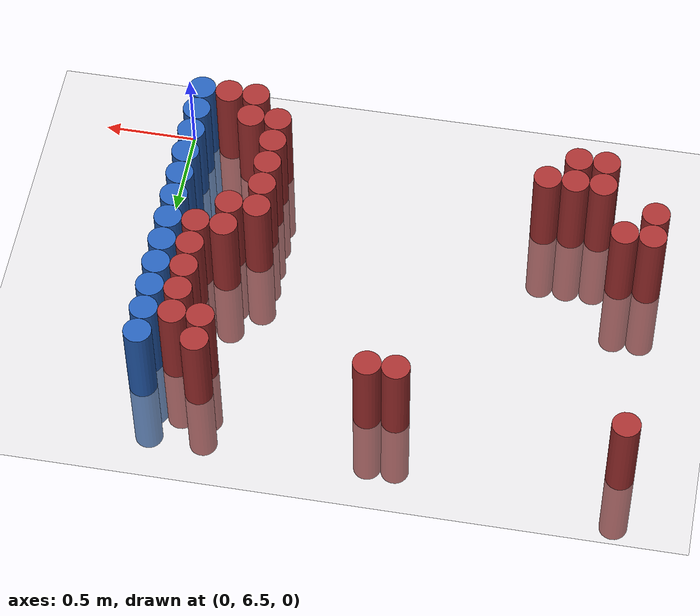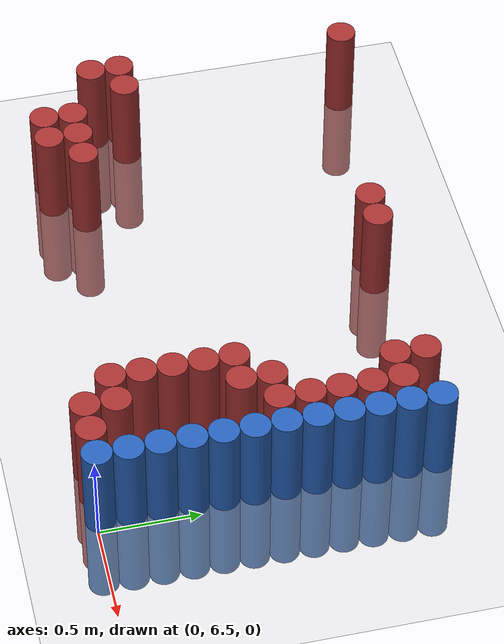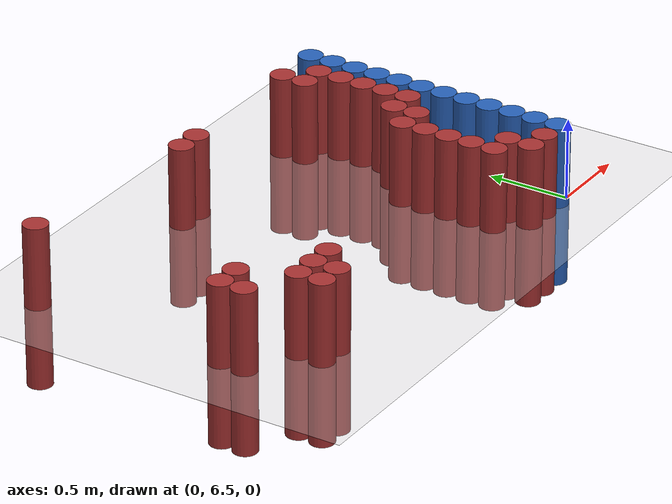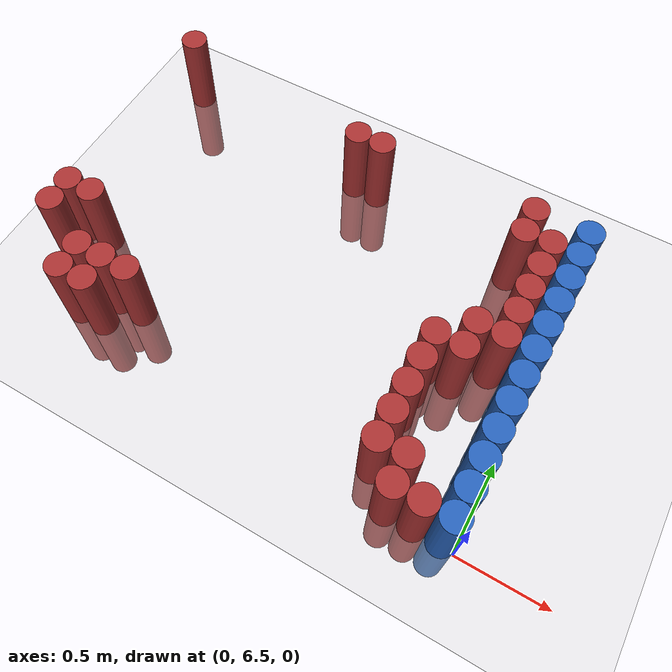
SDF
<sdf version="1.6">
 <world name="default">
  <model name="ground_plane">
   <static>1</static>
   <link name="link">
    <collision name="collision">
     <geometry><plane><normal>0 0 1</normal><size>100 100</size></plane></geometry>
     <surface><friction><ode><mu>100</mu><mu2>50</mu2></ode></friction></surface>
    </collision>
    <visual name="visual">
     <cast_shadows>0</cast_shadows>
     <geometry><plane><normal>0 0 1</normal><size>100 100</size></plane></geometry>
     <material>
      <script><uri>file://media/materials/scripts/gazebo.material</uri><name>Gazebo/Grey</name></script>
     </material>
    </visual>
   </link>
  </model>
  <model name="unit_cylinder_212">
   <static>1</static>
   <pose>-2.625000 6.975000 0.000000 0.000000 0.000000 0.000000</pose>
   <link name="link">
    <inertial>
     <mass>1</mass>
     <inertia><ixx>0.145833</ixx><ixy>0</ixy><ixz>0</ixz><iyy>0.145833</iyy><iyz>0</iyz><izz>0.125</izz></inertia>
    </inertial>
    <collision name="collision">
     <geometry><cylinder><radius>0.075000</radius><length>1</length></cylinder></geometry>
    </collision>
    <visual name="visual">
     <geometry><cylinder><radius>0.075000</radius><length>1</length></cylinder></geometry>
     <material>
      <ambient>0.648000 0.192000 0.192000 1</ambient>
      <diffuse>0.648000 0.192000 0.192000 1</diffuse>
     </material>
     <material>
      <script><name>Gazebo/Grey</name><uri>file://media/materials/scripts/gazebo.material</uri></script>
     </material>
    </visual>
    <sensor name="sensor_contact" type="contact"><contact><collision>collision</collision></contact></sensor>
   </link>
   <plugin filename="gz-sim-touchplugin-system" name="gz::sim::systems::TouchPlugin">
    <target>robot</target>
    <namespace>robot</namespace>
    <time>0.001</time>
    <enabled>true</enabled>
   </plugin>
  </model>
  <model name="unit_cylinder_213">
   <static>1</static>
   <pose>-2.625000 7.125000 0.000000 0.000000 0.000000 0.000000</pose>
   <link name="link">
    <inertial>
     <mass>1</mass>
     <inertia><ixx>0.145833</ixx><ixy>0</ixy><ixz>0</ixz><iyy>0.145833</iyy><iyz>0</iyz><izz>0.125</izz></inertia>
    </inertial>
    <collision name="collision">
     <geometry><cylinder><radius>0.075000</radius><length>1</length></cylinder></geometry>
    </collision>
    <visual name="visual">
     <geometry><cylinder><radius>0.075000</radius><length>1</length></cylinder></geometry>
     <material>
      <ambient>0.648000 0.192000 0.192000 1</ambient>
      <diffuse>0.648000 0.192000 0.192000 1</diffuse>
     </material>
     <material>
      <script><name>Gazebo/Grey</name><uri>file://media/materials/scripts/gazebo.material</uri></script>
     </material>
    </visual>
    <sensor name="sensor_contact" type="contact"><contact><collision>collision</collision></contact></sensor>
   </link>
   <plugin filename="gz-sim-touchplugin-system" name="gz::sim::systems::TouchPlugin">
    <target>robot</target>
    <namespace>robot</namespace>
    <time>0.001</time>
    <enabled>true</enabled>
   </plugin>
  </model>
  <model name="unit_cylinder_214">
   <static>1</static>
   <pose>-2.625000 8.325000 0.000000 0.000000 0.000000 0.000000</pose>
   <link name="link">
    <inertial>
     <mass>1</mass>
     <inertia><ixx>0.145833</ixx><ixy>0</ixy><ixz>0</ixz><iyy>0.145833</iyy><iyz>0</iyz><izz>0.125</izz></inertia>
    </inertial>
    <collision name="collision">
     <geometry><cylinder><radius>0.075000</radius><length>1</length></cylinder></geometry>
    </collision>
    <visual name="visual">
     <geometry><cylinder><radius>0.075000</radius><length>1</length></cylinder></geometry>
     <material>
      <ambient>0.648000 0.192000 0.192000 1</ambient>
      <diffuse>0.648000 0.192000 0.192000 1</diffuse>
     </material>
     <material>
      <script><name>Gazebo/Grey</name><uri>file://media/materials/scripts/gazebo.material</uri></script>
     </material>
    </visual>
    <sensor name="sensor_contact" type="contact"><contact><collision>collision</collision></contact></sensor>
   </link>
   <plugin filename="gz-sim-touchplugin-system" name="gz::sim::systems::TouchPlugin">
    <target>robot</target>
    <namespace>robot</namespace>
    <time>0.001</time>
    <enabled>true</enabled>
   </plugin>
  </model>
  <model name="unit_cylinder_218">
   <static>1</static>
   <pose>-2.475000 7.125000 0.000000 0.000000 0.000000 0.000000</pose>
   <link name="link">
    <inertial>
     <mass>1</mass>
     <inertia><ixx>0.145833</ixx><ixy>0</ixy><ixz>0</ixz><iyy>0.145833</iyy><iyz>0</iyz><izz>0.125</izz></inertia>
    </inertial>
    <collision name="collision">
     <geometry><cylinder><radius>0.075000</radius><length>1</length></cylinder></geometry>
    </collision>
    <visual name="visual">
     <geometry><cylinder><radius>0.075000</radius><length>1</length></cylinder></geometry>
     <material>
      <ambient>0.648000 0.192000 0.192000 1</ambient>
      <diffuse>0.648000 0.192000 0.192000 1</diffuse>
     </material>
     <material>
      <script><name>Gazebo/Grey</name><uri>file://media/materials/scripts/gazebo.material</uri></script>
     </material>
    </visual>
    <sensor name="sensor_contact" type="contact"><contact><collision>collision</collision></contact></sensor>
   </link>
   <plugin filename="gz-sim-touchplugin-system" name="gz::sim::systems::TouchPlugin">
    <target>robot</target>
    <namespace>robot</namespace>
    <time>0.001</time>
    <enabled>true</enabled>
   </plugin>
  </model>
  <model name="unit_cylinder_228">
   <static>1</static>
   <pose>-2.325000 6.675000 0.000000 0.000000 0.000000 0.000000</pose>
   <link name="link">
    <inertial>
     <mass>1</mass>
     <inertia><ixx>0.145833</ixx><ixy>0</ixy><ixz>0</ixz><iyy>0.145833</iyy><iyz>0</iyz><izz>0.125</izz></inertia>
    </inertial>
    <collision name="collision">
     <geometry><cylinder><radius>0.075000</radius><length>1</length></cylinder></geometry>
    </collision>
    <visual name="visual">
     <geometry><cylinder><radius>0.075000</radius><length>1</length></cylinder></geometry>
     <material>
      <ambient>0.648000 0.192000 0.192000 1</ambient>
      <diffuse>0.648000 0.192000 0.192000 1</diffuse>
     </material>
     <material>
      <script><name>Gazebo/Grey</name><uri>file://media/materials/scripts/gazebo.material</uri></script>
     </material>
    </visual>
    <sensor name="sensor_contact" type="contact"><contact><collision>collision</collision></contact></sensor>
   </link>
   <plugin filename="gz-sim-touchplugin-system" name="gz::sim::systems::TouchPlugin">
    <target>robot</target>
    <namespace>robot</namespace>
    <time>0.001</time>
    <enabled>true</enabled>
   </plugin>
  </model>
  <model name="unit_cylinder_229">
   <static>1</static>
   <pose>-2.325000 6.825000 0.000000 0.000000 0.000000 0.000000</pose>
   <link name="link">
    <inertial>
     <mass>1</mass>
     <inertia><ixx>0.145833</ixx><ixy>0</ixy><ixz>0</ixz><iyy>0.145833</iyy><iyz>0</iyz><izz>0.125</izz></inertia>
    </inertial>
    <collision name="collision">
     <geometry><cylinder><radius>0.075000</radius><length>1</length></cylinder></geometry>
    </collision>
    <visual name="visual">
     <geometry><cylinder><radius>0.075000</radius><length>1</length></cylinder></geometry>
     <material>
      <ambient>0.648000 0.192000 0.192000 1</ambient>
      <diffuse>0.648000 0.192000 0.192000 1</diffuse>
     </material>
     <material>
      <script><name>Gazebo/Grey</name><uri>file://media/materials/scripts/gazebo.material</uri></script>
     </material>
    </visual>
    <sensor name="sensor_contact" type="contact"><contact><collision>collision</collision></contact></sensor>
   </link>
   <plugin filename="gz-sim-touchplugin-system" name="gz::sim::systems::TouchPlugin">
    <target>robot</target>
    <namespace>robot</namespace>
    <time>0.001</time>
    <enabled>true</enabled>
   </plugin>
  </model>
  <model name="unit_cylinder_234">
   <static>1</static>
   <pose>-2.175000 6.675000 0.000000 0.000000 0.000000 0.000000</pose>
   <link name="link">
    <inertial>
     <mass>1</mass>
     <inertia><ixx>0.145833</ixx><ixy>0</ixy><ixz>0</ixz><iyy>0.145833</iyy><iyz>0</iyz><izz>0.125</izz></inertia>
    </inertial>
    <collision name="collision">
     <geometry><cylinder><radius>0.075000</radius><length>1</length></cylinder></geometry>
    </collision>
    <visual name="visual">
     <geometry><cylinder><radius>0.075000</radius><length>1</length></cylinder></geometry>
     <material>
      <ambient>0.648000 0.192000 0.192000 1</ambient>
      <diffuse>0.648000 0.192000 0.192000 1</diffuse>
     </material>
     <material>
      <script><name>Gazebo/Grey</name><uri>file://media/materials/scripts/gazebo.material</uri></script>
     </material>
    </visual>
    <sensor name="sensor_contact" type="contact"><contact><collision>collision</collision></contact></sensor>
   </link>
   <plugin filename="gz-sim-touchplugin-system" name="gz::sim::systems::TouchPlugin">
    <target>robot</target>
    <namespace>robot</namespace>
    <time>0.001</time>
    <enabled>true</enabled>
   </plugin>
  </model>
  <model name="unit_cylinder_235">
   <static>1</static>
   <pose>-2.175000 6.825000 0.000000 0.000000 0.000000 0.000000</pose>
   <link name="link">
    <inertial>
     <mass>1</mass>
     <inertia><ixx>0.145833</ixx><ixy>0</ixy><ixz>0</ixz><iyy>0.145833</iyy><iyz>0</iyz><izz>0.125</izz></inertia>
    </inertial>
    <collision name="collision">
     <geometry><cylinder><radius>0.075000</radius><length>1</length></cylinder></geometry>
    </collision>
    <visual name="visual">
     <geometry><cylinder><radius>0.075000</radius><length>1</length></cylinder></geometry>
     <material>
      <ambient>0.648000 0.192000 0.192000 1</ambient>
      <diffuse>0.648000 0.192000 0.192000 1</diffuse>
     </material>
     <material>
      <script><name>Gazebo/Grey</name><uri>file://media/materials/scripts/gazebo.material</uri></script>
     </material>
    </visual>
    <sensor name="sensor_contact" type="contact"><contact><collision>collision</collision></contact></sensor>
   </link>
   <plugin filename="gz-sim-touchplugin-system" name="gz::sim::systems::TouchPlugin">
    <target>robot</target>
    <namespace>robot</namespace>
    <time>0.001</time>
    <enabled>true</enabled>
   </plugin>
  </model>
  <model name="unit_cylinder_236">
   <static>1</static>
   <pose>-2.025000 6.825000 0.000000 0.000000 0.000000 0.000000</pose>
   <link name="link">
    <inertial>
     <mass>1</mass>
     <inertia><ixx>0.145833</ixx><ixy>0</ixy><ixz>0</ixz><iyy>0.145833</iyy><iyz>0</iyz><izz>0.125</izz></inertia>
    </inertial>
    <collision name="collision">
     <geometry><cylinder><radius>0.075000</radius><length>1</length></cylinder></geometry>
    </collision>
    <visual name="visual">
     <geometry><cylinder><radius>0.075000</radius><length>1</length></cylinder></geometry>
     <material>
      <ambient>0.648000 0.192000 0.192000 1</ambient>
      <diffuse>0.648000 0.192000 0.192000 1</diffuse>
     </material>
     <material>
      <script><name>Gazebo/Grey</name><uri>file://media/materials/scripts/gazebo.material</uri></script>
     </material>
    </visual>
    <sensor name="sensor_contact" type="contact"><contact><collision>collision</collision></contact></sensor>
   </link>
   <plugin filename="gz-sim-touchplugin-system" name="gz::sim::systems::TouchPlugin">
    <target>robot</target>
    <namespace>robot</namespace>
    <time>0.001</time>
    <enabled>true</enabled>
   </plugin>
  </model>
  <model name="unit_cylinder_254">
   <static>1</static>
   <pose>-1.425000 8.175000 0.000000 0.000000 0.000000 0.000000</pose>
   <link name="link">
    <inertial>
     <mass>1</mass>
     <inertia><ixx>0.145833</ixx><ixy>0</ixy><ixz>0</ixz><iyy>0.145833</iyy><iyz>0</iyz><izz>0.125</izz></inertia>
    </inertial>
    <collision name="collision">
     <geometry><cylinder><radius>0.075000</radius><length>1</length></cylinder></geometry>
    </collision>
    <visual name="visual">
     <geometry><cylinder><radius>0.075000</radius><length>1</length></cylinder></geometry>
     <material>
      <ambient>0.648000 0.192000 0.192000 1</ambient>
      <diffuse>0.648000 0.192000 0.192000 1</diffuse>
     </material>
     <material>
      <script><name>Gazebo/Grey</name><uri>file://media/materials/scripts/gazebo.material</uri></script>
     </material>
    </visual>
    <sensor name="sensor_contact" type="contact"><contact><collision>collision</collision></contact></sensor>
   </link>
   <plugin filename="gz-sim-touchplugin-system" name="gz::sim::systems::TouchPlugin">
    <target>robot</target>
    <namespace>robot</namespace>
    <time>0.001</time>
    <enabled>true</enabled>
   </plugin>
  </model>
  <model name="unit_cylinder_258">
   <static>1</static>
   <pose>-1.275000 8.175000 0.000000 0.000000 0.000000 0.000000</pose>
   <link name="link">
    <inertial>
     <mass>1</mass>
     <inertia><ixx>0.145833</ixx><ixy>0</ixy><ixz>0</ixz><iyy>0.145833</iyy><iyz>0</iyz><izz>0.125</izz></inertia>
    </inertial>
    <collision name="collision">
     <geometry><cylinder><radius>0.075000</radius><length>1</length></cylinder></geometry>
    </collision>
    <visual name="visual">
     <geometry><cylinder><radius>0.075000</radius><length>1</length></cylinder></geometry>
     <material>
      <ambient>0.648000 0.192000 0.192000 1</ambient>
      <diffuse>0.648000 0.192000 0.192000 1</diffuse>
     </material>
     <material>
      <script><name>Gazebo/Grey</name><uri>file://media/materials/scripts/gazebo.material</uri></script>
     </material>
    </visual>
    <sensor name="sensor_contact" type="contact"><contact><collision>collision</collision></contact></sensor>
   </link>
   <plugin filename="gz-sim-touchplugin-system" name="gz::sim::systems::TouchPlugin">
    <target>robot</target>
    <namespace>robot</namespace>
    <time>0.001</time>
    <enabled>true</enabled>
   </plugin>
  </model>
  <model name="unit_cylinder_260">
   <static>1</static>
   <pose>-0.525000 6.675000 0.000000 0.000000 0.000000 0.000000</pose>
   <link name="link">
    <inertial>
     <mass>1</mass>
     <inertia><ixx>0.145833</ixx><ixy>0</ixy><ixz>0</ixz><iyy>0.145833</iyy><iyz>0</iyz><izz>0.125</izz></inertia>
    </inertial>
    <collision name="collision">
     <geometry><cylinder><radius>0.075000</radius><length>1</length></cylinder></geometry>
    </collision>
    <visual name="visual">
     <geometry><cylinder><radius>0.075000</radius><length>1</length></cylinder></geometry>
     <material>
      <ambient>0.648000 0.192000 0.192000 1</ambient>
      <diffuse>0.648000 0.192000 0.192000 1</diffuse>
     </material>
     <material>
      <script><name>Gazebo/Grey</name><uri>file://media/materials/scripts/gazebo.material</uri></script>
     </material>
    </visual>
    <sensor name="sensor_contact" type="contact"><contact><collision>collision</collision></contact></sensor>
   </link>
   <plugin filename="gz-sim-touchplugin-system" name="gz::sim::systems::TouchPlugin">
    <target>robot</target>
    <namespace>robot</namespace>
    <time>0.001</time>
    <enabled>true</enabled>
   </plugin>
  </model>
  <model name="unit_cylinder_261">
   <static>1</static>
   <pose>-0.525000 6.825000 0.000000 0.000000 0.000000 0.000000</pose>
   <link name="link">
    <inertial>
     <mass>1</mass>
     <inertia><ixx>0.145833</ixx><ixy>0</ixy><ixz>0</ixz><iyy>0.145833</iyy><iyz>0</iyz><izz>0.125</izz></inertia>
    </inertial>
    <collision name="collision">
     <geometry><cylinder><radius>0.075000</radius><length>1</length></cylinder></geometry>
    </collision>
    <visual name="visual">
     <geometry><cylinder><radius>0.075000</radius><length>1</length></cylinder></geometry>
     <material>
      <ambient>0.648000 0.192000 0.192000 1</ambient>
      <diffuse>0.648000 0.192000 0.192000 1</diffuse>
     </material>
     <material>
      <script><name>Gazebo/Grey</name><uri>file://media/materials/scripts/gazebo.material</uri></script>
     </material>
    </visual>
    <sensor name="sensor_contact" type="contact"><contact><collision>collision</collision></contact></sensor>
   </link>
   <plugin filename="gz-sim-touchplugin-system" name="gz::sim::systems::TouchPlugin">
    <target>robot</target>
    <namespace>robot</namespace>
    <time>0.001</time>
    <enabled>true</enabled>
   </plugin>
  </model>
  <model name="unit_cylinder_262">
   <static>1</static>
   <pose>-0.525000 6.975000 0.000000 0.000000 0.000000 0.000000</pose>
   <link name="link">
    <inertial>
     <mass>1</mass>
     <inertia><ixx>0.145833</ixx><ixy>0</ixy><ixz>0</ixz><iyy>0.145833</iyy><iyz>0</iyz><izz>0.125</izz></inertia>
    </inertial>
    <collision name="collision">
     <geometry><cylinder><radius>0.075000</radius><length>1</length></cylinder></geometry>
    </collision>
    <visual name="visual">
     <geometry><cylinder><radius>0.075000</radius><length>1</length></cylinder></geometry>
     <material>
      <ambient>0.648000 0.192000 0.192000 1</ambient>
      <diffuse>0.648000 0.192000 0.192000 1</diffuse>
     </material>
     <material>
      <script><name>Gazebo/Grey</name><uri>file://media/materials/scripts/gazebo.material</uri></script>
     </material>
    </visual>
    <sensor name="sensor_contact" type="contact"><contact><collision>collision</collision></contact></sensor>
   </link>
   <plugin filename="gz-sim-touchplugin-system" name="gz::sim::systems::TouchPlugin">
    <target>robot</target>
    <namespace>robot</namespace>
    <time>0.001</time>
    <enabled>true</enabled>
   </plugin>
  </model>
  <model name="unit_cylinder_263">
   <static>1</static>
   <pose>-0.525000 7.125000 0.000000 0.000000 0.000000 0.000000</pose>
   <link name="link">
    <inertial>
     <mass>1</mass>
     <inertia><ixx>0.145833</ixx><ixy>0</ixy><ixz>0</ixz><iyy>0.145833</iyy><iyz>0</iyz><izz>0.125</izz></inertia>
    </inertial>
    <collision name="collision">
     <geometry><cylinder><radius>0.075000</radius><length>1</length></cylinder></geometry>
    </collision>
    <visual name="visual">
     <geometry><cylinder><radius>0.075000</radius><length>1</length></cylinder></geometry>
     <material>
      <ambient>0.648000 0.192000 0.192000 1</ambient>
      <diffuse>0.648000 0.192000 0.192000 1</diffuse>
     </material>
     <material>
      <script><name>Gazebo/Grey</name><uri>file://media/materials/scripts/gazebo.material</uri></script>
     </material>
    </visual>
    <sensor name="sensor_contact" type="contact"><contact><collision>collision</collision></contact></sensor>
   </link>
   <plugin filename="gz-sim-touchplugin-system" name="gz::sim::systems::TouchPlugin">
    <target>robot</target>
    <namespace>robot</namespace>
    <time>0.001</time>
    <enabled>true</enabled>
   </plugin>
  </model>
  <model name="unit_cylinder_264">
   <static>1</static>
   <pose>-0.525000 7.275000 0.000000 0.000000 0.000000 0.000000</pose>
   <link name="link">
    <inertial>
     <mass>1</mass>
     <inertia><ixx>0.145833</ixx><ixy>0</ixy><ixz>0</ixz><iyy>0.145833</iyy><iyz>0</iyz><izz>0.125</izz></inertia>
    </inertial>
    <collision name="collision">
     <geometry><cylinder><radius>0.075000</radius><length>1</length></cylinder></geometry>
    </collision>
    <visual name="visual">
     <geometry><cylinder><radius>0.075000</radius><length>1</length></cylinder></geometry>
     <material>
      <ambient>0.648000 0.192000 0.192000 1</ambient>
      <diffuse>0.648000 0.192000 0.192000 1</diffuse>
     </material>
     <material>
      <script><name>Gazebo/Grey</name><uri>file://media/materials/scripts/gazebo.material</uri></script>
     </material>
    </visual>
    <sensor name="sensor_contact" type="contact"><contact><collision>collision</collision></contact></sensor>
   </link>
   <plugin filename="gz-sim-touchplugin-system" name="gz::sim::systems::TouchPlugin">
    <target>robot</target>
    <namespace>robot</namespace>
    <time>0.001</time>
    <enabled>true</enabled>
   </plugin>
  </model>
  <model name="unit_cylinder_265">
   <static>1</static>
   <pose>-0.375000 6.525000 0.000000 0.000000 0.000000 0.000000</pose>
   <link name="link">
    <inertial>
     <mass>1</mass>
     <inertia><ixx>0.145833</ixx><ixy>0</ixy><ixz>0</ixz><iyy>0.145833</iyy><iyz>0</iyz><izz>0.125</izz></inertia>
    </inertial>
    <collision name="collision">
     <geometry><cylinder><radius>0.075000</radius><length>1</length></cylinder></geometry>
    </collision>
    <visual name="visual">
     <geometry><cylinder><radius>0.075000</radius><length>1</length></cylinder></geometry>
     <material>
      <ambient>0.648000 0.192000 0.192000 1</ambient>
      <diffuse>0.648000 0.192000 0.192000 1</diffuse>
     </material>
     <material>
      <script><name>Gazebo/Grey</name><uri>file://media/materials/scripts/gazebo.material</uri></script>
     </material>
    </visual>
    <sensor name="sensor_contact" type="contact"><contact><collision>collision</collision></contact></sensor>
   </link>
   <plugin filename="gz-sim-touchplugin-system" name="gz::sim::systems::TouchPlugin">
    <target>robot</target>
    <namespace>robot</namespace>
    <time>0.001</time>
    <enabled>true</enabled>
   </plugin>
  </model>
  <model name="unit_cylinder_266">
   <static>1</static>
   <pose>-0.375000 6.675000 0.000000 0.000000 0.000000 0.000000</pose>
   <link name="link">
    <inertial>
     <mass>1</mass>
     <inertia><ixx>0.145833</ixx><ixy>0</ixy><ixz>0</ixz><iyy>0.145833</iyy><iyz>0</iyz><izz>0.125</izz></inertia>
    </inertial>
    <collision name="collision">
     <geometry><cylinder><radius>0.075000</radius><length>1</length></cylinder></geometry>
    </collision>
    <visual name="visual">
     <geometry><cylinder><radius>0.075000</radius><length>1</length></cylinder></geometry>
     <material>
      <ambient>0.648000 0.192000 0.192000 1</ambient>
      <diffuse>0.648000 0.192000 0.192000 1</diffuse>
     </material>
     <material>
      <script><name>Gazebo/Grey</name><uri>file://media/materials/scripts/gazebo.material</uri></script>
     </material>
    </visual>
    <sensor name="sensor_contact" type="contact"><contact><collision>collision</collision></contact></sensor>
   </link>
   <plugin filename="gz-sim-touchplugin-system" name="gz::sim::systems::TouchPlugin">
    <target>robot</target>
    <namespace>robot</namespace>
    <time>0.001</time>
    <enabled>true</enabled>
   </plugin>
  </model>
  <model name="unit_cylinder_267">
   <static>1</static>
   <pose>-0.375000 7.275000 0.000000 0.000000 0.000000 0.000000</pose>
   <link name="link">
    <inertial>
     <mass>1</mass>
     <inertia><ixx>0.145833</ixx><ixy>0</ixy><ixz>0</ixz><iyy>0.145833</iyy><iyz>0</iyz><izz>0.125</izz></inertia>
    </inertial>
    <collision name="collision">
     <geometry><cylinder><radius>0.075000</radius><length>1</length></cylinder></geometry>
    </collision>
    <visual name="visual">
     <geometry><cylinder><radius>0.075000</radius><length>1</length></cylinder></geometry>
     <material>
      <ambient>0.648000 0.192000 0.192000 1</ambient>
      <diffuse>0.648000 0.192000 0.192000 1</diffuse>
     </material>
     <material>
      <script><name>Gazebo/Grey</name><uri>file://media/materials/scripts/gazebo.material</uri></script>
     </material>
    </visual>
    <sensor name="sensor_contact" type="contact"><contact><collision>collision</collision></contact></sensor>
   </link>
   <plugin filename="gz-sim-touchplugin-system" name="gz::sim::systems::TouchPlugin">
    <target>robot</target>
    <namespace>robot</namespace>
    <time>0.001</time>
    <enabled>true</enabled>
   </plugin>
  </model>
  <model name="unit_cylinder_268">
   <static>1</static>
   <pose>-0.375000 7.425000 0.000000 0.000000 0.000000 0.000000</pose>
   <link name="link">
    <inertial>
     <mass>1</mass>
     <inertia><ixx>0.145833</ixx><ixy>0</ixy><ixz>0</ixz><iyy>0.145833</iyy><iyz>0</iyz><izz>0.125</izz></inertia>
    </inertial>
    <collision name="collision">
     <geometry><cylinder><radius>0.075000</radius><length>1</length></cylinder></geometry>
    </collision>
    <visual name="visual">
     <geometry><cylinder><radius>0.075000</radius><length>1</length></cylinder></geometry>
     <material>
      <ambient>0.648000 0.192000 0.192000 1</ambient>
      <diffuse>0.648000 0.192000 0.192000 1</diffuse>
     </material>
     <material>
      <script><name>Gazebo/Grey</name><uri>file://media/materials/scripts/gazebo.material</uri></script>
     </material>
    </visual>
    <sensor name="sensor_contact" type="contact"><contact><collision>collision</collision></contact></sensor>
   </link>
   <plugin filename="gz-sim-touchplugin-system" name="gz::sim::systems::TouchPlugin">
    <target>robot</target>
    <namespace>robot</namespace>
    <time>0.001</time>
    <enabled>true</enabled>
   </plugin>
  </model>
  <model name="unit_cylinder_269">
   <static>1</static>
   <pose>-0.375000 8.025000 0.000000 0.000000 0.000000 0.000000</pose>
   <link name="link">
    <inertial>
     <mass>1</mass>
     <inertia><ixx>0.145833</ixx><ixy>0</ixy><ixz>0</ixz><iyy>0.145833</iyy><iyz>0</iyz><izz>0.125</izz></inertia>
    </inertial>
    <collision name="collision">
     <geometry><cylinder><radius>0.075000</radius><length>1</length></cylinder></geometry>
    </collision>
    <visual name="visual">
     <geometry><cylinder><radius>0.075000</radius><length>1</length></cylinder></geometry>
     <material>
      <ambient>0.648000 0.192000 0.192000 1</ambient>
      <diffuse>0.648000 0.192000 0.192000 1</diffuse>
     </material>
     <material>
      <script><name>Gazebo/Grey</name><uri>file://media/materials/scripts/gazebo.material</uri></script>
     </material>
    </visual>
    <sensor name="sensor_contact" type="contact"><contact><collision>collision</collision></contact></sensor>
   </link>
   <plugin filename="gz-sim-touchplugin-system" name="gz::sim::systems::TouchPlugin">
    <target>robot</target>
    <namespace>robot</namespace>
    <time>0.001</time>
    <enabled>true</enabled>
   </plugin>
  </model>
  <model name="unit_cylinder_270">
   <static>1</static>
   <pose>-0.375000 8.175000 0.000000 0.000000 0.000000 0.000000</pose>
   <link name="link">
    <inertial>
     <mass>1</mass>
     <inertia><ixx>0.145833</ixx><ixy>0</ixy><ixz>0</ixz><iyy>0.145833</iyy><iyz>0</iyz><izz>0.125</izz></inertia>
    </inertial>
    <collision name="collision">
     <geometry><cylinder><radius>0.075000</radius><length>1</length></cylinder></geometry>
    </collision>
    <visual name="visual">
     <geometry><cylinder><radius>0.075000</radius><length>1</length></cylinder></geometry>
     <material>
      <ambient>0.648000 0.192000 0.192000 1</ambient>
      <diffuse>0.648000 0.192000 0.192000 1</diffuse>
     </material>
     <material>
      <script><name>Gazebo/Grey</name><uri>file://media/materials/scripts/gazebo.material</uri></script>
     </material>
    </visual>
    <sensor name="sensor_contact" type="contact"><contact><collision>collision</collision></contact></sensor>
   </link>
   <plugin filename="gz-sim-touchplugin-system" name="gz::sim::systems::TouchPlugin">
    <target>robot</target>
    <namespace>robot</namespace>
    <time>0.001</time>
    <enabled>true</enabled>
   </plugin>
  </model>
  <model name="unit_cylinder_281">
   <static>1</static>
   <pose>-0.225000 6.525000 0.000000 0.000000 0.000000 0.000000</pose>
   <link name="link">
    <inertial>
     <mass>1</mass>
     <inertia><ixx>0.145833</ixx><ixy>0</ixy><ixz>0</ixz><iyy>0.145833</iyy><iyz>0</iyz><izz>0.125</izz></inertia>
    </inertial>
    <collision name="collision">
     <geometry><cylinder><radius>0.075000</radius><length>1</length></cylinder></geometry>
    </collision>
    <visual name="visual">
     <geometry><cylinder><radius>0.075000</radius><length>1</length></cylinder></geometry>
     <material>
      <ambient>0.648000 0.192000 0.192000 1</ambient>
      <diffuse>0.648000 0.192000 0.192000 1</diffuse>
     </material>
     <material>
      <script><name>Gazebo/Grey</name><uri>file://media/materials/scripts/gazebo.material</uri></script>
     </material>
    </visual>
    <sensor name="sensor_contact" type="contact"><contact><collision>collision</collision></contact></sensor>
   </link>
   <plugin filename="gz-sim-touchplugin-system" name="gz::sim::systems::TouchPlugin">
    <target>robot</target>
    <namespace>robot</namespace>
    <time>0.001</time>
    <enabled>true</enabled>
   </plugin>
  </model>
  <model name="unit_cylinder_282">
   <static>1</static>
   <pose>-0.225000 7.425000 0.000000 0.000000 0.000000 0.000000</pose>
   <link name="link">
    <inertial>
     <mass>1</mass>
     <inertia><ixx>0.145833</ixx><ixy>0</ixy><ixz>0</ixz><iyy>0.145833</iyy><iyz>0</iyz><izz>0.125</izz></inertia>
    </inertial>
    <collision name="collision">
     <geometry><cylinder><radius>0.075000</radius><length>1</length></cylinder></geometry>
    </collision>
    <visual name="visual">
     <geometry><cylinder><radius>0.075000</radius><length>1</length></cylinder></geometry>
     <material>
      <ambient>0.648000 0.192000 0.192000 1</ambient>
      <diffuse>0.648000 0.192000 0.192000 1</diffuse>
     </material>
     <material>
      <script><name>Gazebo/Grey</name><uri>file://media/materials/scripts/gazebo.material</uri></script>
     </material>
    </visual>
    <sensor name="sensor_contact" type="contact"><contact><collision>collision</collision></contact></sensor>
   </link>
   <plugin filename="gz-sim-touchplugin-system" name="gz::sim::systems::TouchPlugin">
    <target>robot</target>
    <namespace>robot</namespace>
    <time>0.001</time>
    <enabled>true</enabled>
   </plugin>
  </model>
  <model name="unit_cylinder_283">
   <static>1</static>
   <pose>-0.225000 7.575000 0.000000 0.000000 0.000000 0.000000</pose>
   <link name="link">
    <inertial>
     <mass>1</mass>
     <inertia><ixx>0.145833</ixx><ixy>0</ixy><ixz>0</ixz><iyy>0.145833</iyy><iyz>0</iyz><izz>0.125</izz></inertia>
    </inertial>
    <collision name="collision">
     <geometry><cylinder><radius>0.075000</radius><length>1</length></cylinder></geometry>
    </collision>
    <visual name="visual">
     <geometry><cylinder><radius>0.075000</radius><length>1</length></cylinder></geometry>
     <material>
      <ambient>0.648000 0.192000 0.192000 1</ambient>
      <diffuse>0.648000 0.192000 0.192000 1</diffuse>
     </material>
     <material>
      <script><name>Gazebo/Grey</name><uri>file://media/materials/scripts/gazebo.material</uri></script>
     </material>
    </visual>
    <sensor name="sensor_contact" type="contact"><contact><collision>collision</collision></contact></sensor>
   </link>
   <plugin filename="gz-sim-touchplugin-system" name="gz::sim::systems::TouchPlugin">
    <target>robot</target>
    <namespace>robot</namespace>
    <time>0.001</time>
    <enabled>true</enabled>
   </plugin>
  </model>
  <model name="unit_cylinder_284">
   <static>1</static>
   <pose>-0.225000 7.725000 0.000000 0.000000 0.000000 0.000000</pose>
   <link name="link">
    <inertial>
     <mass>1</mass>
     <inertia><ixx>0.145833</ixx><ixy>0</ixy><ixz>0</ixz><iyy>0.145833</iyy><iyz>0</iyz><izz>0.125</izz></inertia>
    </inertial>
    <collision name="collision">
     <geometry><cylinder><radius>0.075000</radius><length>1</length></cylinder></geometry>
    </collision>
    <visual name="visual">
     <geometry><cylinder><radius>0.075000</radius><length>1</length></cylinder></geometry>
     <material>
      <ambient>0.648000 0.192000 0.192000 1</ambient>
      <diffuse>0.648000 0.192000 0.192000 1</diffuse>
     </material>
     <material>
      <script><name>Gazebo/Grey</name><uri>file://media/materials/scripts/gazebo.material</uri></script>
     </material>
    </visual>
    <sensor name="sensor_contact" type="contact"><contact><collision>collision</collision></contact></sensor>
   </link>
   <plugin filename="gz-sim-touchplugin-system" name="gz::sim::systems::TouchPlugin">
    <target>robot</target>
    <namespace>robot</namespace>
    <time>0.001</time>
    <enabled>true</enabled>
   </plugin>
  </model>
  <model name="unit_cylinder_285">
   <static>1</static>
   <pose>-0.225000 7.875000 0.000000 0.000000 0.000000 0.000000</pose>
   <link name="link">
    <inertial>
     <mass>1</mass>
     <inertia><ixx>0.145833</ixx><ixy>0</ixy><ixz>0</ixz><iyy>0.145833</iyy><iyz>0</iyz><izz>0.125</izz></inertia>
    </inertial>
    <collision name="collision">
     <geometry><cylinder><radius>0.075000</radius><length>1</length></cylinder></geometry>
    </collision>
    <visual name="visual">
     <geometry><cylinder><radius>0.075000</radius><length>1</length></cylinder></geometry>
     <material>
      <ambient>0.648000 0.192000 0.192000 1</ambient>
      <diffuse>0.648000 0.192000 0.192000 1</diffuse>
     </material>
     <material>
      <script><name>Gazebo/Grey</name><uri>file://media/materials/scripts/gazebo.material</uri></script>
     </material>
    </visual>
    <sensor name="sensor_contact" type="contact"><contact><collision>collision</collision></contact></sensor>
   </link>
   <plugin filename="gz-sim-touchplugin-system" name="gz::sim::systems::TouchPlugin">
    <target>robot</target>
    <namespace>robot</namespace>
    <time>0.001</time>
    <enabled>true</enabled>
   </plugin>
  </model>
  <model name="unit_cylinder_286">
   <static>1</static>
   <pose>-0.225000 8.025000 0.000000 0.000000 0.000000 0.000000</pose>
   <link name="link">
    <inertial>
     <mass>1</mass>
     <inertia><ixx>0.145833</ixx><ixy>0</ixy><ixz>0</ixz><iyy>0.145833</iyy><iyz>0</iyz><izz>0.125</izz></inertia>
    </inertial>
    <collision name="collision">
     <geometry><cylinder><radius>0.075000</radius><length>1</length></cylinder></geometry>
    </collision>
    <visual name="visual">
     <geometry><cylinder><radius>0.075000</radius><length>1</length></cylinder></geometry>
     <material>
      <ambient>0.648000 0.192000 0.192000 1</ambient>
      <diffuse>0.648000 0.192000 0.192000 1</diffuse>
     </material>
     <material>
      <script><name>Gazebo/Grey</name><uri>file://media/materials/scripts/gazebo.material</uri></script>
     </material>
    </visual>
    <sensor name="sensor_contact" type="contact"><contact><collision>collision</collision></contact></sensor>
   </link>
   <plugin filename="gz-sim-touchplugin-system" name="gz::sim::systems::TouchPlugin">
    <target>robot</target>
    <namespace>robot</namespace>
    <time>0.001</time>
    <enabled>true</enabled>
   </plugin>
  </model>
  <model name="unit_cylinder_303">
   <static>1</static>
   <pose>-0.075000 6.525000 0.000000 0.000000 0.000000 0.000000</pose>
   <link name="link">
    <inertial>
     <mass>1</mass>
     <inertia><ixx>0.145833</ixx><ixy>0</ixy><ixz>0</ixz><iyy>0.145833</iyy><iyz>0</iyz><izz>0.125</izz></inertia>
    </inertial>
    <collision name="collision">
     <geometry><cylinder><radius>0.075000</radius><length>1</length></cylinder></geometry>
    </collision>
    <visual name="visual">
     <geometry><cylinder><radius>0.075000</radius><length>1</length></cylinder></geometry>
     <material>
      <ambient>0.152000 0.379000 0.720000 1</ambient>
      <diffuse>0.152000 0.379000 0.720000 1</diffuse>
     </material>
     <material>
      <script><name>Gazebo/Grey</name><uri>file://media/materials/scripts/gazebo.material</uri></script>
     </material>
    </visual>
    <sensor name="sensor_contact" type="contact"><contact><collision>collision</collision></contact></sensor>
   </link>
   <plugin filename="gz-sim-touchplugin-system" name="gz::sim::systems::TouchPlugin">
    <target>robot</target>
    <namespace>robot</namespace>
    <time>0.001</time>
    <enabled>true</enabled>
   </plugin>
  </model>
  <model name="unit_cylinder_304">
   <static>1</static>
   <pose>-0.075000 6.675000 0.000000 0.000000 0.000000 0.000000</pose>
   <link name="link">
    <inertial>
     <mass>1</mass>
     <inertia><ixx>0.145833</ixx><ixy>0</ixy><ixz>0</ixz><iyy>0.145833</iyy><iyz>0</iyz><izz>0.125</izz></inertia>
    </inertial>
    <collision name="collision">
     <geometry><cylinder><radius>0.075000</radius><length>1</length></cylinder></geometry>
    </collision>
    <visual name="visual">
     <geometry><cylinder><radius>0.075000</radius><length>1</length></cylinder></geometry>
     <material>
      <ambient>0.152000 0.379000 0.720000 1</ambient>
      <diffuse>0.152000 0.379000 0.720000 1</diffuse>
     </material>
     <material>
      <script><name>Gazebo/Grey</name><uri>file://media/materials/scripts/gazebo.material</uri></script>
     </material>
    </visual>
    <sensor name="sensor_contact" type="contact"><contact><collision>collision</collision></contact></sensor>
   </link>
   <plugin filename="gz-sim-touchplugin-system" name="gz::sim::systems::TouchPlugin">
    <target>robot</target>
    <namespace>robot</namespace>
    <time>0.001</time>
    <enabled>true</enabled>
   </plugin>
  </model>
  <model name="unit_cylinder_305">
   <static>1</static>
   <pose>-0.075000 6.825000 0.000000 0.000000 0.000000 0.000000</pose>
   <link name="link">
    <inertial>
     <mass>1</mass>
     <inertia><ixx>0.145833</ixx><ixy>0</ixy><ixz>0</ixz><iyy>0.145833</iyy><iyz>0</iyz><izz>0.125</izz></inertia>
    </inertial>
    <collision name="collision">
     <geometry><cylinder><radius>0.075000</radius><length>1</length></cylinder></geometry>
    </collision>
    <visual name="visual">
     <geometry><cylinder><radius>0.075000</radius><length>1</length></cylinder></geometry>
     <material>
      <ambient>0.152000 0.379000 0.720000 1</ambient>
      <diffuse>0.152000 0.379000 0.720000 1</diffuse>
     </material>
     <material>
      <script><name>Gazebo/Grey</name><uri>file://media/materials/scripts/gazebo.material</uri></script>
     </material>
    </visual>
    <sensor name="sensor_contact" type="contact"><contact><collision>collision</collision></contact></sensor>
   </link>
   <plugin filename="gz-sim-touchplugin-system" name="gz::sim::systems::TouchPlugin">
    <target>robot</target>
    <namespace>robot</namespace>
    <time>0.001</time>
    <enabled>true</enabled>
   </plugin>
  </model>
  <model name="unit_cylinder_306">
   <static>1</static>
   <pose>-0.075000 6.975000 0.000000 0.000000 0.000000 0.000000</pose>
   <link name="link">
    <inertial>
     <mass>1</mass>
     <inertia><ixx>0.145833</ixx><ixy>0</ixy><ixz>0</ixz><iyy>0.145833</iyy><iyz>0</iyz><izz>0.125</izz></inertia>
    </inertial>
    <collision name="collision">
     <geometry><cylinder><radius>0.075000</radius><length>1</length></cylinder></geometry>
    </collision>
    <visual name="visual">
     <geometry><cylinder><radius>0.075000</radius><length>1</length></cylinder></geometry>
     <material>
      <ambient>0.152000 0.379000 0.720000 1</ambient>
      <diffuse>0.152000 0.379000 0.720000 1</diffuse>
     </material>
     <material>
      <script><name>Gazebo/Grey</name><uri>file://media/materials/scripts/gazebo.material</uri></script>
     </material>
    </visual>
    <sensor name="sensor_contact" type="contact"><contact><collision>collision</collision></contact></sensor>
   </link>
   <plugin filename="gz-sim-touchplugin-system" name="gz::sim::systems::TouchPlugin">
    <target>robot</target>
    <namespace>robot</namespace>
    <time>0.001</time>
    <enabled>true</enabled>
   </plugin>
  </model>
  <model name="unit_cylinder_307">
   <static>1</static>
   <pose>-0.075000 7.125000 0.000000 0.000000 0.000000 0.000000</pose>
   <link name="link">
    <inertial>
     <mass>1</mass>
     <inertia><ixx>0.145833</ixx><ixy>0</ixy><ixz>0</ixz><iyy>0.145833</iyy><iyz>0</iyz><izz>0.125</izz></inertia>
    </inertial>
    <collision name="collision">
     <geometry><cylinder><radius>0.075000</radius><length>1</length></cylinder></geometry>
    </collision>
    <visual name="visual">
     <geometry><cylinder><radius>0.075000</radius><length>1</length></cylinder></geometry>
     <material>
      <ambient>0.152000 0.379000 0.720000 1</ambient>
      <diffuse>0.152000 0.379000 0.720000 1</diffuse>
     </material>
     <material>
      <script><name>Gazebo/Grey</name><uri>file://media/materials/scripts/gazebo.material</uri></script>
     </material>
    </visual>
    <sensor name="sensor_contact" type="contact"><contact><collision>collision</collision></contact></sensor>
   </link>
   <plugin filename="gz-sim-touchplugin-system" name="gz::sim::systems::TouchPlugin">
    <target>robot</target>
    <namespace>robot</namespace>
    <time>0.001</time>
    <enabled>true</enabled>
   </plugin>
  </model>
  <model name="unit_cylinder_308">
   <static>1</static>
   <pose>-0.075000 7.275000 0.000000 0.000000 0.000000 0.000000</pose>
   <link name="link">
    <inertial>
     <mass>1</mass>
     <inertia><ixx>0.145833</ixx><ixy>0</ixy><ixz>0</ixz><iyy>0.145833</iyy><iyz>0</iyz><izz>0.125</izz></inertia>
    </inertial>
    <collision name="collision">
     <geometry><cylinder><radius>0.075000</radius><length>1</length></cylinder></geometry>
    </collision>
    <visual name="visual">
     <geometry><cylinder><radius>0.075000</radius><length>1</length></cylinder></geometry>
     <material>
      <ambient>0.152000 0.379000 0.720000 1</ambient>
      <diffuse>0.152000 0.379000 0.720000 1</diffuse>
     </material>
     <material>
      <script><name>Gazebo/Grey</name><uri>file://media/materials/scripts/gazebo.material</uri></script>
     </material>
    </visual>
    <sensor name="sensor_contact" type="contact"><contact><collision>collision</collision></contact></sensor>
   </link>
   <plugin filename="gz-sim-touchplugin-system" name="gz::sim::systems::TouchPlugin">
    <target>robot</target>
    <namespace>robot</namespace>
    <time>0.001</time>
    <enabled>true</enabled>
   </plugin>
  </model>
  <model name="unit_cylinder_309">
   <static>1</static>
   <pose>-0.075000 7.425000 0.000000 0.000000 0.000000 0.000000</pose>
   <link name="link">
    <inertial>
     <mass>1</mass>
     <inertia><ixx>0.145833</ixx><ixy>0</ixy><ixz>0</ixz><iyy>0.145833</iyy><iyz>0</iyz><izz>0.125</izz></inertia>
    </inertial>
    <collision name="collision">
     <geometry><cylinder><radius>0.075000</radius><length>1</length></cylinder></geometry>
    </collision>
    <visual name="visual">
     <geometry><cylinder><radius>0.075000</radius><length>1</length></cylinder></geometry>
     <material>
      <ambient>0.152000 0.379000 0.720000 1</ambient>
      <diffuse>0.152000 0.379000 0.720000 1</diffuse>
     </material>
     <material>
      <script><name>Gazebo/Grey</name><uri>file://media/materials/scripts/gazebo.material</uri></script>
     </material>
    </visual>
    <sensor name="sensor_contact" type="contact"><contact><collision>collision</collision></contact></sensor>
   </link>
   <plugin filename="gz-sim-touchplugin-system" name="gz::sim::systems::TouchPlugin">
    <target>robot</target>
    <namespace>robot</namespace>
    <time>0.001</time>
    <enabled>true</enabled>
   </plugin>
  </model>
  <model name="unit_cylinder_310">
   <static>1</static>
   <pose>-0.075000 7.575000 0.000000 0.000000 0.000000 0.000000</pose>
   <link name="link">
    <inertial>
     <mass>1</mass>
     <inertia><ixx>0.145833</ixx><ixy>0</ixy><ixz>0</ixz><iyy>0.145833</iyy><iyz>0</iyz><izz>0.125</izz></inertia>
    </inertial>
    <collision name="collision">
     <geometry><cylinder><radius>0.075000</radius><length>1</length></cylinder></geometry>
    </collision>
    <visual name="visual">
     <geometry><cylinder><radius>0.075000</radius><length>1</length></cylinder></geometry>
     <material>
      <ambient>0.152000 0.379000 0.720000 1</ambient>
      <diffuse>0.152000 0.379000 0.720000 1</diffuse>
     </material>
     <material>
      <script><name>Gazebo/Grey</name><uri>file://media/materials/scripts/gazebo.material</uri></script>
     </material>
    </visual>
    <sensor name="sensor_contact" type="contact"><contact><collision>collision</collision></contact></sensor>
   </link>
   <plugin filename="gz-sim-touchplugin-system" name="gz::sim::systems::TouchPlugin">
    <target>robot</target>
    <namespace>robot</namespace>
    <time>0.001</time>
    <enabled>true</enabled>
   </plugin>
  </model>
  <model name="unit_cylinder_311">
   <static>1</static>
   <pose>-0.075000 7.725000 0.000000 0.000000 0.000000 0.000000</pose>
   <link name="link">
    <inertial>
     <mass>1</mass>
     <inertia><ixx>0.145833</ixx><ixy>0</ixy><ixz>0</ixz><iyy>0.145833</iyy><iyz>0</iyz><izz>0.125</izz></inertia>
    </inertial>
    <collision name="collision">
     <geometry><cylinder><radius>0.075000</radius><length>1</length></cylinder></geometry>
    </collision>
    <visual name="visual">
     <geometry><cylinder><radius>0.075000</radius><length>1</length></cylinder></geometry>
     <material>
      <ambient>0.152000 0.379000 0.720000 1</ambient>
      <diffuse>0.152000 0.379000 0.720000 1</diffuse>
     </material>
     <material>
      <script><name>Gazebo/Grey</name><uri>file://media/materials/scripts/gazebo.material</uri></script>
     </material>
    </visual>
    <sensor name="sensor_contact" type="contact"><contact><collision>collision</collision></contact></sensor>
   </link>
   <plugin filename="gz-sim-touchplugin-system" name="gz::sim::systems::TouchPlugin">
    <target>robot</target>
    <namespace>robot</namespace>
    <time>0.001</time>
    <enabled>true</enabled>
   </plugin>
  </model>
  <model name="unit_cylinder_312">
   <static>1</static>
   <pose>-0.075000 7.875000 0.000000 0.000000 0.000000 0.000000</pose>
   <link name="link">
    <inertial>
     <mass>1</mass>
     <inertia><ixx>0.145833</ixx><ixy>0</ixy><ixz>0</ixz><iyy>0.145833</iyy><iyz>0</iyz><izz>0.125</izz></inertia>
    </inertial>
    <collision name="collision">
     <geometry><cylinder><radius>0.075000</radius><length>1</length></cylinder></geometry>
    </collision>
    <visual name="visual">
     <geometry><cylinder><radius>0.075000</radius><length>1</length></cylinder></geometry>
     <material>
      <ambient>0.152000 0.379000 0.720000 1</ambient>
      <diffuse>0.152000 0.379000 0.720000 1</diffuse>
     </material>
     <material>
      <script><name>Gazebo/Grey</name><uri>file://media/materials/scripts/gazebo.material</uri></script>
     </material>
    </visual>
    <sensor name="sensor_contact" type="contact"><contact><collision>collision</collision></contact></sensor>
   </link>
   <plugin filename="gz-sim-touchplugin-system" name="gz::sim::systems::TouchPlugin">
    <target>robot</target>
    <namespace>robot</namespace>
    <time>0.001</time>
    <enabled>true</enabled>
   </plugin>
  </model>
  <model name="unit_cylinder_313">
   <static>1</static>
   <pose>-0.075000 8.025000 0.000000 0.000000 0.000000 0.000000</pose>
   <link name="link">
    <inertial>
     <mass>1</mass>
     <inertia><ixx>0.145833</ixx><ixy>0</ixy><ixz>0</ixz><iyy>0.145833</iyy><iyz>0</iyz><izz>0.125</izz></inertia>
    </inertial>
    <collision name="collision">
     <geometry><cylinder><radius>0.075000</radius><length>1</length></cylinder></geometry>
    </collision>
    <visual name="visual">
     <geometry><cylinder><radius>0.075000</radius><length>1</length></cylinder></geometry>
     <material>
      <ambient>0.152000 0.379000 0.720000 1</ambient>
      <diffuse>0.152000 0.379000 0.720000 1</diffuse>
     </material>
     <material>
      <script><name>Gazebo/Grey</name><uri>file://media/materials/scripts/gazebo.material</uri></script>
     </material>
    </visual>
    <sensor name="sensor_contact" type="contact"><contact><collision>collision</collision></contact></sensor>
   </link>
   <plugin filename="gz-sim-touchplugin-system" name="gz::sim::systems::TouchPlugin">
    <target>robot</target>
    <namespace>robot</namespace>
    <time>0.001</time>
    <enabled>true</enabled>
   </plugin>
  </model>
  <model name="unit_cylinder_314">
   <static>1</static>
   <pose>-0.075000 8.175000 0.000000 0.000000 0.000000 0.000000</pose>
   <link name="link">
    <inertial>
     <mass>1</mass>
     <inertia><ixx>0.145833</ixx><ixy>0</ixy><ixz>0</ixz><iyy>0.145833</iyy><iyz>0</iyz><izz>0.125</izz></inertia>
    </inertial>
    <collision name="collision">
     <geometry><cylinder><radius>0.075000</radius><length>1</length></cylinder></geometry>
    </collision>
    <visual name="visual">
     <geometry><cylinder><radius>0.075000</radius><length>1</length></cylinder></geometry>
     <material>
      <ambient>0.152000 0.379000 0.720000 1</ambient>
      <diffuse>0.152000 0.379000 0.720000 1</diffuse>
     </material>
     <material>
      <script><name>Gazebo/Grey</name><uri>file://media/materials/scripts/gazebo.material</uri></script>
     </material>
    </visual>
    <sensor name="sensor_contact" type="contact"><contact><collision>collision</collision></contact></sensor>
   </link>
   <plugin filename="gz-sim-touchplugin-system" name="gz::sim::systems::TouchPlugin">
    <target>robot</target>
    <namespace>robot</namespace>
    <time>0.001</time>
    <enabled>true</enabled>
   </plugin>
  </model>
 </world>
</sdf>
